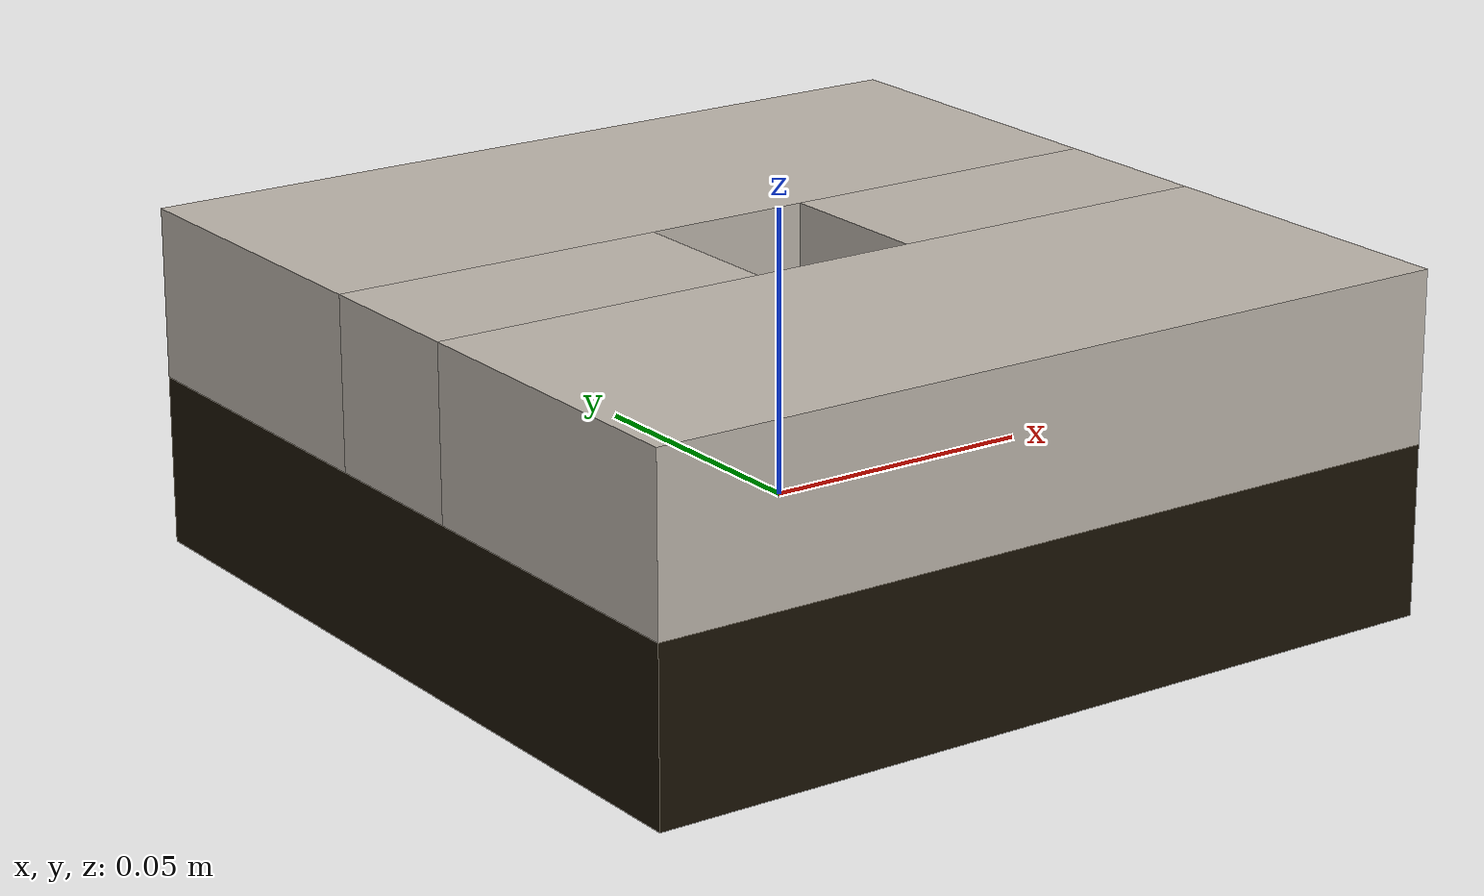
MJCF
<mujoco model="custom-hole">
  <asset>
    <texture file="../textures/steel-scratched.png" type="cube" name="steel-metal"/>
    <material name="smetal" reflectance="1.0" shininess="1.0" specular="1.0" texrepeat="1 1" texture="steel-metal" texuniform="true"/>
  </asset>
  <worldbody>
    <body>
      <body name="object">
        <geom type="box" size="0.075 0.075 0.015" pos="0 0 0" rgba="0.1 0.074 0.02 1" solimp="0.998 0.998 0.001" solref="0.02 1" density="100" friction="0.95 0.3 0.1" group="0" condim="4" material="smetal"/>
        <geom pos="0 0.045 0.030" size="0.075 0.030 0.015" type="box" solimp="0.998 0.998 0.001" solref="0.02 1" density="100" friction="0.95 0.3 0.1" group="0" condim="4" material="smetal" />
        <geom pos="0 -0.045 0.030" size="0.075 0.030 0.015" type="box" solimp="0.998 0.998 0.001" solref="0.02 1" density="100" friction="0.95 0.3 0.1" group="0" condim="4" material="smetal" />
        <geom pos="0.045 0.0 0.03" size="0.03 0.015 0.015" type="box" solimp="0.998 0.998 0.001" solref="0.02 1" density="100" friction="0.95 0.3 0.1" group="0" condim="4" material="smetal" />
        <geom pos="-0.045 0 0.03" size="0.03 0.015 0.015" type="box" solimp="0.998 0.998 0.001" solref="0.02 1" density="100" friction="0.95 0.3 0.1" group="0" condim="4" material="smetal" />
      </body>
      <site rgba="0 0 0 0" size="0.005" pos="0 0 0" name="bottom_site"/>
      <site rgba="0 0 0 0" size="0.005" pos="0 0 0.045" name="top_site"/>
      <site rgba="0 0 0 0" size="0.005" pos="0 0 0" name="horizontal_radius_site"/>
    </body>
  </worldbody>
</mujoco>
